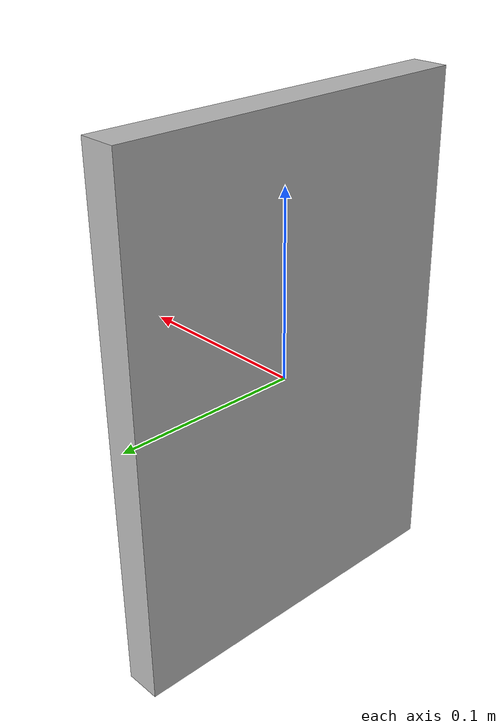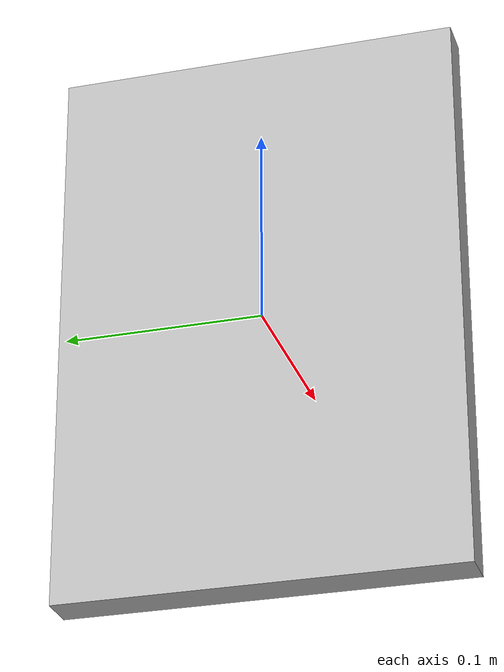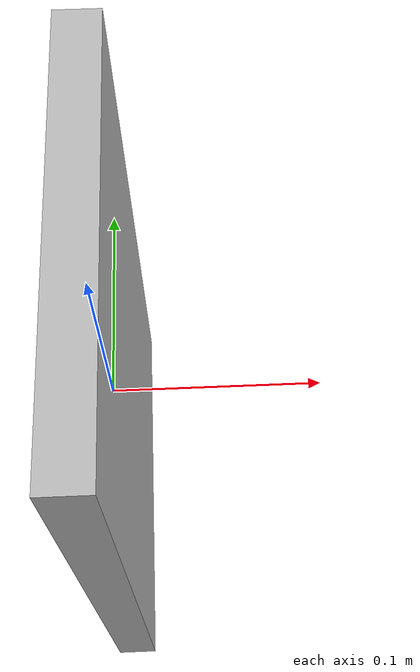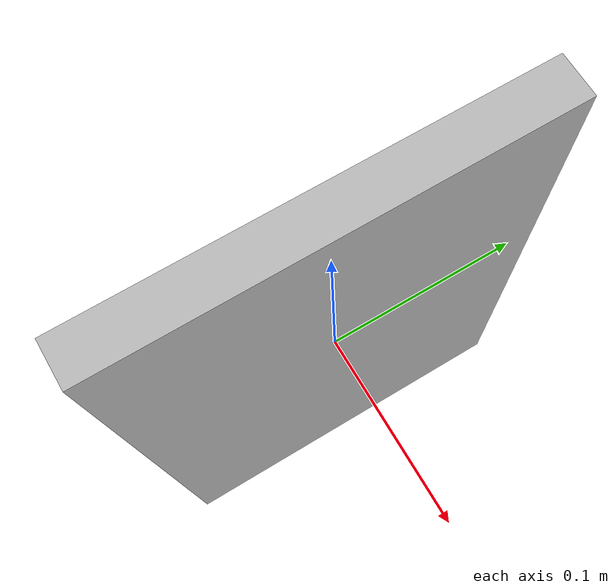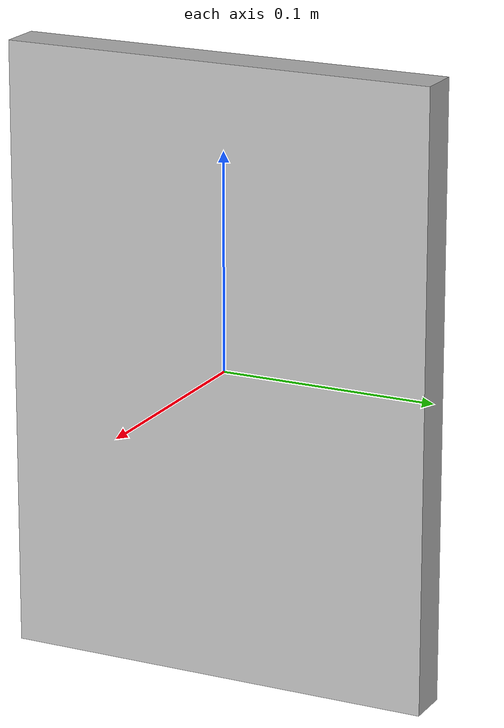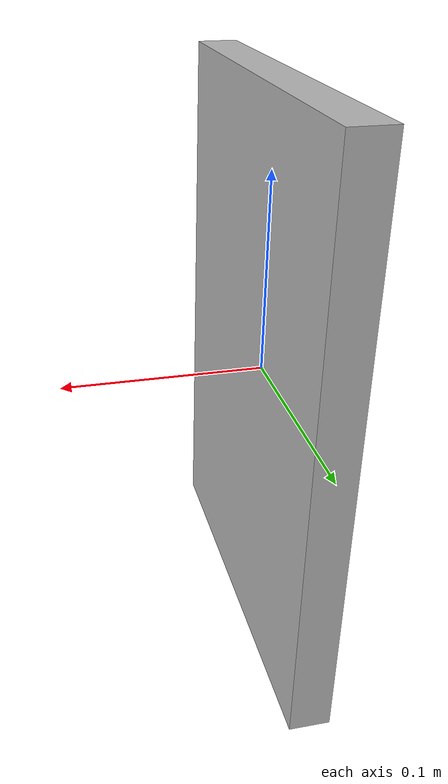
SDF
<?xml version='1.0'?>
<sdf version="1.6">
<model name="acircles_pattern">
  <static>true</static>
    <link name="link">
      <visual name="visual">
        <geometry>
          <mesh>
            <uri>model://acircles_pattern/meshes/acircles_pattern.dae</uri>
          </mesh>
        </geometry>
      </visual>
    </link>
  </model>
</sdf>
